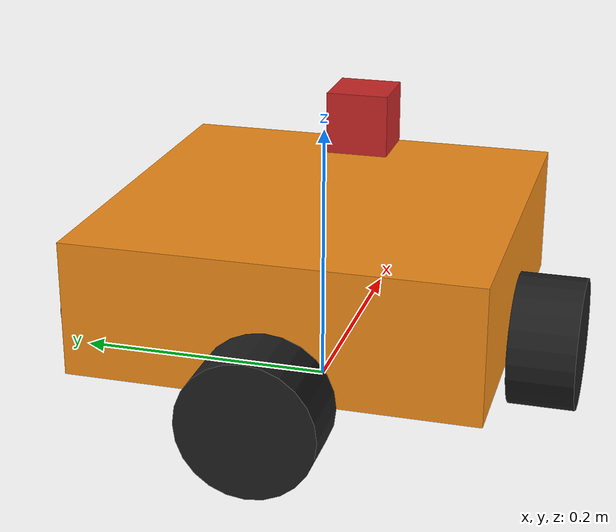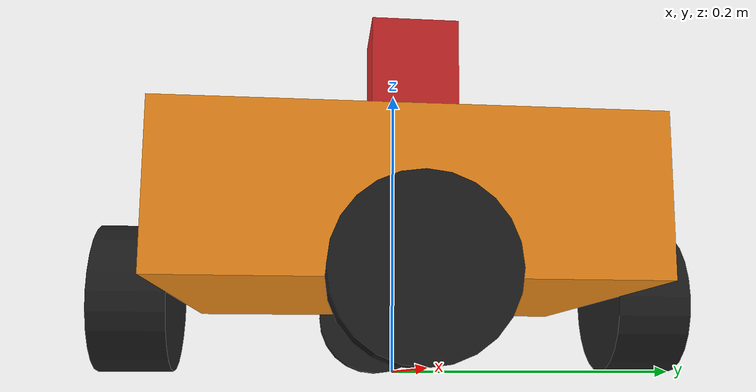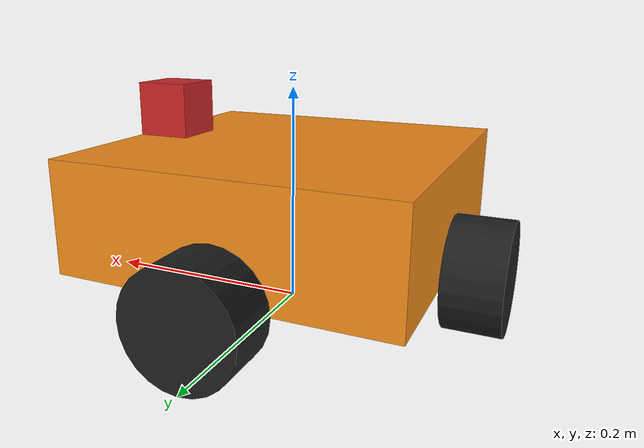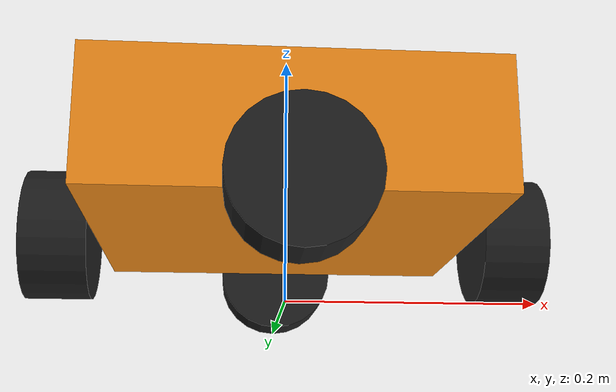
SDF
<?xml version='1.0'?>
<sdf version='1.7'>
  <model name='robot_model_3'>
    <link name='robot_model_3::base_footprint'>
      <inertial>
        <pose>0 0 0 0 -0 0</pose>
        <mass>100</mass>
        <inertia>
          <ixx>2</ixx>
          <ixy>0</ixy>
          <ixz>0</ixz>
          <iyy>2</iyy>
          <iyz>0</iyz>
          <izz>2</izz>
        </inertia>
      </inertial>
      <self_collide>0</self_collide>
      <enable_wind>0</enable_wind>
      <kinematic>0</kinematic>
      <pose>0 0 0.05 0 -0 0</pose>
      <gravity>1</gravity>
      <visual name='base_footprint_fixed_joint_lump__base_link_visual_1'>
        <pose>0 0 0.05 0 -0 0</pose>
        <geometry>
          <box>
            <size>0.3 0.3 0.1</size>
          </box>
        </geometry>
        <material>
          <script>
            <name>Gazebo/Orange</name>
            <uri>file://media/materials/scripts/gazebo.material</uri>
          </script>
          <shader type='pixel'>
            <normal_map>__default__</normal_map>
          </shader>
          <ambient>1 0.509 0.047 1</ambient>
          <diffuse>1 0.509 0.047 1</diffuse>
          <specular>0.5 0.5 0.5 1</specular>
          <emissive>0 0 0 1</emissive>
        </material>
        <transparency>0</transparency>
        <cast_shadows>1</cast_shadows>
      </visual>
      <visual name='base_footprint_fixed_joint_lump__camera_link_visual_2'>
        <pose>0.125 0 0.125 0 -0 0</pose>
        <geometry>
          <box>
            <size>0.05 0.05 0.05</size>
          </box>
        </geometry>
        <material>
          <script>
            <name>Gazebo/Red</name>
            <uri>file://media/materials/scripts/gazebo.material</uri>
          </script>
          <shader type='pixel'>
            <normal_map>__default__</normal_map>
          </shader>
          <ambient>1 0 0 1</ambient>
          <diffuse>1 0 0 1</diffuse>
          <specular>0.1 0.1 0.1 1</specular>
          <emissive>0 0 0 1</emissive>
        </material>
        <transparency>0</transparency>
        <cast_shadows>1</cast_shadows>
      </visual>
      <collision name='base_footprint_fixed_joint_lump__base_link_collision'>
        <laser_retro>0</laser_retro>
        <max_contacts>10</max_contacts>
        <pose>0 0 0.05 0 -0 0</pose>
        <geometry>
          <box>
            <size>0.3 0.3 0.1</size>
          </box>
        </geometry>
        <surface>
          <friction>
            <ode>
              <mu>1</mu>
              <mu2>1</mu2>
              <fdir1>0 0 0</fdir1>
              <slip1>0</slip1>
              <slip2>0</slip2>
            </ode>
            <torsional>
              <coefficient>1</coefficient>
              <patch_radius>0</patch_radius>
              <surface_radius>0</surface_radius>
              <use_patch_radius>1</use_patch_radius>
              <ode>
                <slip>0</slip>
              </ode>
            </torsional>
          </friction>
          <bounce>
            <restitution_coefficient>0</restitution_coefficient>
            <threshold>1e+06</threshold>
          </bounce>
          <contact>
            <collide_without_contact>0</collide_without_contact>
            <collide_without_contact_bitmask>1</collide_without_contact_bitmask>
            <collide_bitmask>1</collide_bitmask>
            <ode>
              <soft_cfm>0</soft_cfm>
              <soft_erp>0.2</soft_erp>
              <kp>1e+13</kp>
              <kd>1</kd>
              <max_vel>0.01</max_vel>
              <min_depth>0</min_depth>
            </ode>
            <bullet>
              <split_impulse>1</split_impulse>
              <split_impulse_penetration_threshold>-0.01</split_impulse_penetration_threshold>
              <soft_cfm>0</soft_cfm>
              <soft_erp>0.2</soft_erp>
              <kp>1e+13</kp>
              <kd>1</kd>
            </bullet>
          </contact>
        </surface>
      </collision>
      <collision name='base_footprint_fixed_joint_lump__camera_link_collision_1'>
        <laser_retro>0</laser_retro>
        <max_contacts>10</max_contacts>
        <pose>0.125 0 0.125 0 -0 0</pose>
        <geometry>
          <box>
            <size>0.05 0.05 0.05</size>
          </box>
        </geometry>
        <surface>
          <friction>
            <ode>
              <mu>0.2</mu>
              <mu2>0.2</mu2>
              <fdir1>0 0 0</fdir1>
              <slip1>0</slip1>
              <slip2>0</slip2>
            </ode>
            <torsional>
              <coefficient>1</coefficient>
              <patch_radius>0</patch_radius>
              <surface_radius>0</surface_radius>
              <use_patch_radius>1</use_patch_radius>
              <ode>
                <slip>0</slip>
              </ode>
            </torsional>
          </friction>
          <bounce>
            <restitution_coefficient>0</restitution_coefficient>
            <threshold>1e+06</threshold>
          </bounce>
          <contact>
            <collide_without_contact>0</collide_without_contact>
            <collide_without_contact_bitmask>1</collide_without_contact_bitmask>
            <collide_bitmask>1</collide_bitmask>
            <ode>
              <soft_cfm>0</soft_cfm>
              <soft_erp>0.2</soft_erp>
              <kp>1e+13</kp>
              <kd>1</kd>
              <max_vel>0.01</max_vel>
              <min_depth>0</min_depth>
            </ode>
            <bullet>
              <split_impulse>1</split_impulse>
              <split_impulse_penetration_threshold>-0.01</split_impulse_penetration_threshold>
              <soft_cfm>0</soft_cfm>
              <soft_erp>0.2</soft_erp>
              <kp>1e+13</kp>
              <kd>1</kd>
            </bullet>
          </contact>
        </surface>
      </collision>
    </link>
    <link name='robot_model_3::wheel_1'>
      <pose>0 -0.175 0.05 -1.5708 0 0</pose>
      <inertial>
        <pose>0 0 0 0 -0 0</pose>
        <mass>1</mass>
        <inertia>
          <ixx>1</ixx>
          <ixy>0</ixy>
          <ixz>0</ixz>
          <iyy>1</iyy>
          <iyz>0</iyz>
          <izz>1</izz>
        </inertia>
      </inertial>
      <gravity>1</gravity>
      <velocity_decay />
      <self_collide>0</self_collide>
      <enable_wind>0</enable_wind>
      <kinematic>0</kinematic>
      <visual name='wheel_1_visual'>
        <pose>0 0 0 0 -0 0</pose>
        <geometry>
          <cylinder>
            <length>0.05</length>
            <radius>0.05</radius>
          </cylinder>
        </geometry>
        <material>
          <script>
            <name>Gazebo/Black</name>
            <uri>file://media/materials/scripts/gazebo.material</uri>
          </script>
          <shader type='pixel'>
            <normal_map>__default__</normal_map>
          </shader>
          <ambient>0 0 0 1</ambient>
          <diffuse>0 0 0 1</diffuse>
          <specular>0.1 0.1 0.1 1</specular>
          <emissive>0 0 0 1</emissive>
        </material>
        <transparency>0</transparency>
        <cast_shadows>1</cast_shadows>
      </visual>
      <collision name='wheel_1_collision'>
        <laser_retro>0</laser_retro>
        <max_contacts>10</max_contacts>
        <pose>0 0 0 0 -0 0</pose>
        <geometry>
          <cylinder>
            <radius>0.05</radius>
            <length>0.05</length>
          </cylinder>
        </geometry>
        <surface>
          <friction>
            <ode>
              <mu>1</mu>
              <mu2>1</mu2>
              <fdir1>0 0 0</fdir1>
              <slip1>0</slip1>
              <slip2>0</slip2>
            </ode>
            <torsional>
              <coefficient>1</coefficient>
              <patch_radius>0</patch_radius>
              <surface_radius>0</surface_radius>
              <use_patch_radius>1</use_patch_radius>
              <ode>
                <slip>0</slip>
              </ode>
            </torsional>
          </friction>
          <bounce>
            <restitution_coefficient>0</restitution_coefficient>
            <threshold>1e+06</threshold>
          </bounce>
          <contact>
            <collide_without_contact>0</collide_without_contact>
            <collide_without_contact_bitmask>1</collide_without_contact_bitmask>
            <collide_bitmask>1</collide_bitmask>
            <ode>
              <soft_cfm>0</soft_cfm>
              <soft_erp>0.2</soft_erp>
              <kp>1e+13</kp>
              <kd>1</kd>
              <max_vel>0.01</max_vel>
              <min_depth>0</min_depth>
            </ode>
            <bullet>
              <split_impulse>1</split_impulse>
              <split_impulse_penetration_threshold>-0.01</split_impulse_penetration_threshold>
              <soft_cfm>0</soft_cfm>
              <soft_erp>0.2</soft_erp>
              <kp>1e+13</kp>
              <kd>1</kd>
            </bullet>
          </contact>
        </surface>
      </collision>
    </link>
    <link name='robot_model_3::wheel_2'>
      <pose>0 0.175 0.05 -1.5708 0 0</pose>
      <inertial>
        <pose>0 0 0 0 -0 0</pose>
        <mass>1</mass>
        <inertia>
          <ixx>1</ixx>
          <ixy>0</ixy>
          <ixz>0</ixz>
          <iyy>1</iyy>
          <iyz>0</iyz>
          <izz>1</izz>
        </inertia>
      </inertial>
      <gravity>1</gravity>
      <velocity_decay />
      <self_collide>0</self_collide>
      <enable_wind>0</enable_wind>
      <kinematic>0</kinematic>
      <visual name='wheel_2_visual'>
        <pose>0 0 0 0 -0 0</pose>
        <geometry>
          <cylinder>
            <length>0.05</length>
            <radius>0.05</radius>
          </cylinder>
        </geometry>
        <material>
          <script>
            <name>Gazebo/Black</name>
            <uri>file://media/materials/scripts/gazebo.material</uri>
          </script>
          <shader type='pixel'>
            <normal_map>__default__</normal_map>
          </shader>
          <ambient>0 0 0 1</ambient>
          <diffuse>0 0 0 1</diffuse>
          <specular>0.1 0.1 0.1 1</specular>
          <emissive>0 0 0 1</emissive>
        </material>
        <transparency>0</transparency>
        <cast_shadows>1</cast_shadows>
      </visual>
      <collision name='wheel_2_collision'>
        <laser_retro>0</laser_retro>
        <max_contacts>10</max_contacts>
        <pose>0 0 0 0 -0 0</pose>
        <geometry>
          <cylinder>
            <radius>0.05</radius>
            <length>0.05</length>
          </cylinder>
        </geometry>
        <surface>
          <friction>
            <ode>
              <mu>1</mu>
              <mu2>1</mu2>
              <fdir1>0 0 0</fdir1>
              <slip1>0</slip1>
              <slip2>0</slip2>
            </ode>
            <torsional>
              <coefficient>1</coefficient>
              <patch_radius>0</patch_radius>
              <surface_radius>0</surface_radius>
              <use_patch_radius>1</use_patch_radius>
              <ode>
                <slip>0</slip>
              </ode>
            </torsional>
          </friction>
          <bounce>
            <restitution_coefficient>0</restitution_coefficient>
            <threshold>1e+06</threshold>
          </bounce>
          <contact>
            <collide_without_contact>0</collide_without_contact>
            <collide_without_contact_bitmask>1</collide_without_contact_bitmask>
            <collide_bitmask>1</collide_bitmask>
            <ode>
              <soft_cfm>0</soft_cfm>
              <soft_erp>0.2</soft_erp>
              <kp>1e+13</kp>
              <kd>1</kd>
              <max_vel>0.01</max_vel>
              <min_depth>0</min_depth>
            </ode>
            <bullet>
              <split_impulse>1</split_impulse>
              <split_impulse_penetration_threshold>-0.01</split_impulse_penetration_threshold>
              <soft_cfm>0</soft_cfm>
              <soft_erp>0.2</soft_erp>
              <kp>1e+13</kp>
              <kd>1</kd>
            </bullet>
          </contact>
        </surface>
      </collision>
    </link>
    <link name='robot_model_3::wheel_3'>
      <pose>0.175 0 0.05 -1.5707 0 1.5708</pose>
      <inertial>
        <pose>0 0 0 0 -0 0</pose>
        <mass>1</mass>
        <inertia>
          <ixx>1</ixx>
          <ixy>0</ixy>
          <ixz>0</ixz>
          <iyy>1</iyy>
          <iyz>0</iyz>
          <izz>1</izz>
        </inertia>
      </inertial>
      <gravity>1</gravity>
      <velocity_decay />
      <self_collide>0</self_collide>
      <enable_wind>0</enable_wind>
      <kinematic>0</kinematic>
      <visual name='wheel_3_visual'>
        <pose>0 0 0 0 -0 0</pose>
        <geometry>
          <cylinder>
            <length>0.05</length>
            <radius>0.05</radius>
          </cylinder>
        </geometry>
        <material>
          <script>
            <name>Gazebo/Black</name>
            <uri>file://media/materials/scripts/gazebo.material</uri>
          </script>
          <shader type='pixel'>
            <normal_map>__default__</normal_map>
          </shader>
          <ambient>0 0 0 1</ambient>
          <diffuse>0 0 0 1</diffuse>
          <specular>0.1 0.1 0.1 1</specular>
          <emissive>0 0 0 1</emissive>
        </material>
        <transparency>0</transparency>
        <cast_shadows>1</cast_shadows>
      </visual>
      <collision name='wheel_3_collision'>
        <laser_retro>0</laser_retro>
        <max_contacts>10</max_contacts>
        <pose>0 0 0 0 -0 0</pose>
        <geometry>
          <cylinder>
            <radius>0.05</radius>
            <length>0.05</length>
          </cylinder>
        </geometry>
        <surface>
          <friction>
            <ode>
              <mu>1</mu>
              <mu2>1</mu2>
              <fdir1>0 0 0</fdir1>
              <slip1>0</slip1>
              <slip2>0</slip2>
            </ode>
            <torsional>
              <coefficient>1</coefficient>
              <patch_radius>0</patch_radius>
              <surface_radius>0</surface_radius>
              <use_patch_radius>1</use_patch_radius>
              <ode>
                <slip>0</slip>
              </ode>
            </torsional>
          </friction>
          <bounce>
            <restitution_coefficient>0</restitution_coefficient>
            <threshold>1e+06</threshold>
          </bounce>
          <contact>
            <collide_without_contact>0</collide_without_contact>
            <collide_without_contact_bitmask>1</collide_without_contact_bitmask>
            <collide_bitmask>1</collide_bitmask>
            <ode>
              <soft_cfm>0</soft_cfm>
              <soft_erp>0.2</soft_erp>
              <kp>1e+13</kp>
              <kd>1</kd>
              <max_vel>0.01</max_vel>
              <min_depth>0</min_depth>
            </ode>
            <bullet>
              <split_impulse>1</split_impulse>
              <split_impulse_penetration_threshold>-0.01</split_impulse_penetration_threshold>
              <soft_cfm>0</soft_cfm>
              <soft_erp>0.2</soft_erp>
              <kp>1e+13</kp>
              <kd>1</kd>
            </bullet>
          </contact>
        </surface>
      </collision>
    </link>
    <link name='robot_model_3::wheel_4'>
      <pose>-0.175 0 0.05 -1.5708 0 1.5708</pose>
      <inertial>
        <pose>0 0 0 0 -0 0</pose>
        <mass>1</mass>
        <inertia>
          <ixx>1</ixx>
          <ixy>0</ixy>
          <ixz>0</ixz>
          <iyy>1</iyy>
          <iyz>0</iyz>
          <izz>1</izz>
        </inertia>
      </inertial>
      <gravity>1</gravity>
      <velocity_decay />
      <self_collide>0</self_collide>
      <enable_wind>0</enable_wind>
      <kinematic>0</kinematic>
      <visual name='wheel_4_visual'>
        <pose>0 0 0 0 -0 0</pose>
        <geometry>
          <cylinder>
            <length>0.05</length>
            <radius>0.05</radius>
          </cylinder>
        </geometry>
        <material>
          <script>
            <name>Gazebo/Black</name>
            <uri>file://media/materials/scripts/gazebo.material</uri>
          </script>
          <shader type='pixel'>
            <normal_map>__default__</normal_map>
          </shader>
          <ambient>0 0 0 1</ambient>
          <diffuse>0 0 0 1</diffuse>
          <specular>0.1 0.1 0.1 1</specular>
          <emissive>0 0 0 1</emissive>
        </material>
        <transparency>0</transparency>
        <cast_shadows>1</cast_shadows>
      </visual>
      <collision name='wheel_4_collision'>
        <laser_retro>0</laser_retro>
        <max_contacts>10</max_contacts>
        <pose>0 0 0 0 -0 0</pose>
        <geometry>
          <cylinder>
            <radius>0.05</radius>
            <length>0.05</length>
          </cylinder>
        </geometry>
        <surface>
          <friction>
            <ode>
              <mu>1</mu>
              <mu2>1</mu2>
              <fdir1>0 0 0</fdir1>
              <slip1>0</slip1>
              <slip2>0</slip2>
            </ode>
            <torsional>
              <coefficient>1</coefficient>
              <patch_radius>0</patch_radius>
              <surface_radius>0</surface_radius>
              <use_patch_radius>1</use_patch_radius>
              <ode>
                <slip>0</slip>
              </ode>
            </torsional>
          </friction>
          <bounce>
            <restitution_coefficient>0</restitution_coefficient>
            <threshold>1e+06</threshold>
          </bounce>
          <contact>
            <collide_without_contact>0</collide_without_contact>
            <collide_without_contact_bitmask>1</collide_without_contact_bitmask>
            <collide_bitmask>1</collide_bitmask>
            <ode>
              <soft_cfm>0</soft_cfm>
              <soft_erp>0.2</soft_erp>
              <kp>1e+13</kp>
              <kd>1</kd>
              <max_vel>0.01</max_vel>
              <min_depth>0</min_depth>
            </ode>
            <bullet>
              <split_impulse>1</split_impulse>
              <split_impulse_penetration_threshold>-0.01</split_impulse_penetration_threshold>
              <soft_cfm>0</soft_cfm>
              <soft_erp>0.2</soft_erp>
              <kp>1e+13</kp>
              <kd>1</kd>
            </bullet>
          </contact>
        </surface>
      </collision>
    </link>
    <joint name='robot_model_3::base_to_wheel1' type='revolute'>
      <parent>robot_model_3::base_footprint</parent>
      <child>robot_model_3::wheel_1</child>
      <pose>0 -0 0 0 -0 0</pose>
      <axis>
        <xyz>0 0 1</xyz>
        <limit>
          <lower>-1e+16</lower>
          <upper>1e+16</upper>
          <effort>-1</effort>
          <velocity>-1</velocity>
        </limit>
        <dynamics>
          <spring_reference>0</spring_reference>
          <spring_stiffness>0</spring_stiffness>
          <damping>0</damping>
          <friction>0</friction>
        </dynamics>
      </axis>
      <physics>
        <ode>
          <limit>
            <cfm>0</cfm>
            <erp>0.2</erp>
          </limit>
          <suspension>
            <cfm>0</cfm>
            <erp>0.2</erp>
          </suspension>
        </ode>
      </physics>
    </joint>
    <joint name='robot_model_3::base_to_wheel2' type='revolute'>
      <parent>robot_model_3::base_footprint</parent>
      <child>robot_model_3::wheel_2</child>
      <pose>0 -0 0 0 -0 0</pose>
      <axis>
        <xyz>0 0 1</xyz>
        <limit>
          <lower>-1e+16</lower>
          <upper>1e+16</upper>
          <effort>-1</effort>
          <velocity>-1</velocity>
        </limit>
        <dynamics>
          <spring_reference>0</spring_reference>
          <spring_stiffness>0</spring_stiffness>
          <damping>0</damping>
          <friction>0</friction>
        </dynamics>
      </axis>
      <physics>
        <ode>
          <limit>
            <cfm>0</cfm>
            <erp>0.2</erp>
          </limit>
          <suspension>
            <cfm>0</cfm>
            <erp>0.2</erp>
          </suspension>
        </ode>
      </physics>
    </joint>
    <joint name='robot_model_3::base_to_wheel3' type='revolute'>
      <parent>robot_model_3::base_footprint</parent>
      <child>robot_model_3::wheel_3</child>
      <pose>0 0 0 0 -0 0</pose>
      <axis>
        <xyz>0 0 1</xyz>
        <limit>
          <lower>-1e+16</lower>
          <upper>1e+16</upper>
          <effort>-1</effort>
          <velocity>-1</velocity>
        </limit>
        <dynamics>
          <spring_reference>0</spring_reference>
          <spring_stiffness>0</spring_stiffness>
          <damping>0</damping>
          <friction>0</friction>
        </dynamics>
      </axis>
      <physics>
        <ode>
          <limit>
            <cfm>0</cfm>
            <erp>0.2</erp>
          </limit>
          <suspension>
            <cfm>0</cfm>
            <erp>0.2</erp>
          </suspension>
        </ode>
      </physics>
    </joint>
    <joint name='robot_model_3::base_to_wheel4' type='revolute'>
      <parent>robot_model_3::base_footprint</parent>
      <child>robot_model_3::wheel_4</child>
      <pose>0 0 0 0 -0 0</pose>
      <axis>
        <xyz>0 0 1</xyz>
        <limit>
          <lower>-1e+16</lower>
          <upper>1e+16</upper>
          <effort>-1</effort>
          <velocity>-1</velocity>
        </limit>
        <dynamics>
          <spring_reference>0</spring_reference>
          <spring_stiffness>0</spring_stiffness>
          <damping>0</damping>
          <friction>0</friction>
        </dynamics>
      </axis>
      <physics>
        <ode>
          <limit>
            <cfm>0</cfm>
            <erp>0.2</erp>
          </limit>
          <suspension>
            <cfm>0</cfm>
            <erp>0.2</erp>
          </suspension>
        </ode>
      </physics>
    </joint>
    <static>0</static>
    <allow_auto_disable>0</allow_auto_disable>
  </model>
</sdf>
